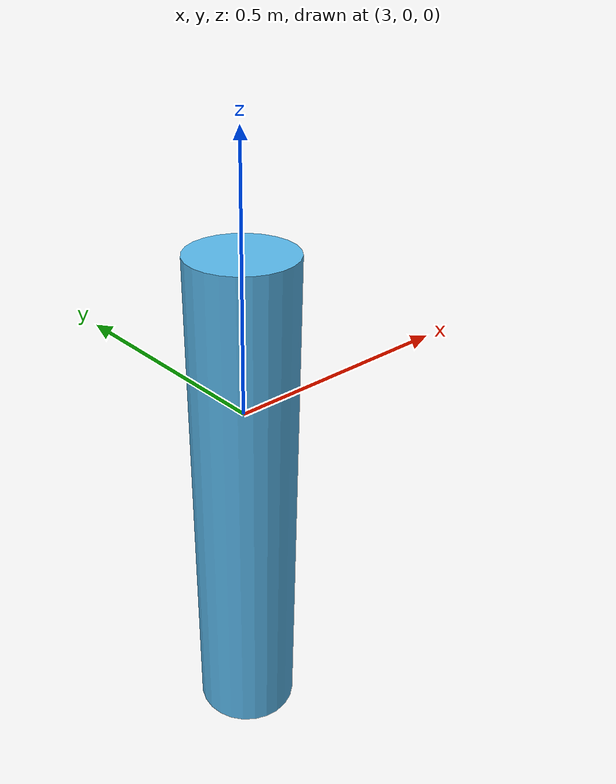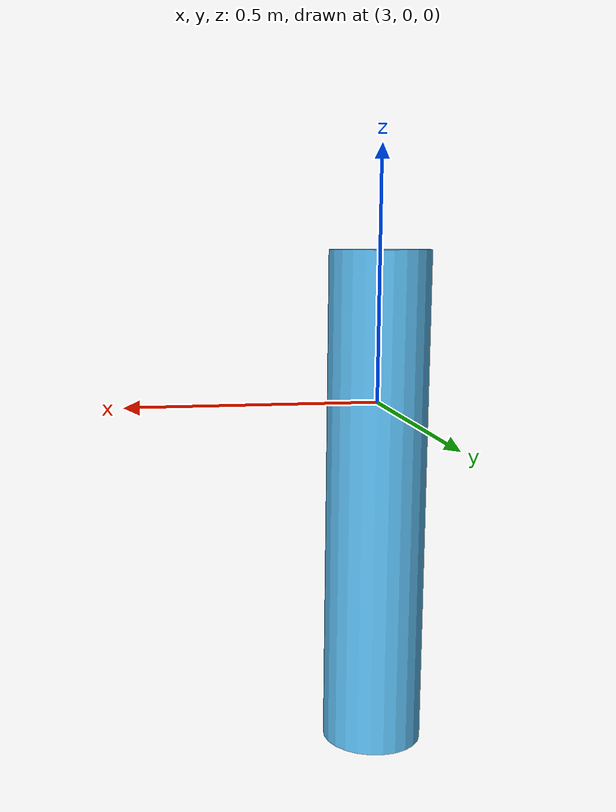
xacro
<?xml version="1.0" ?>
<robot xmlns:xacro="http://www.ros.org/wiki/xacro"
	name="obstacle">

  <xacro:macro name="default_inertial">
    <inertial>
      <mass value="0.01"/>
      <origin xyz="0 0 0"/>
      <inertia ixx="0.001" ixy="0.0" ixz="0.0" iyy="0.001" iyz="0.0" izz="0.001" />
    </inertial>
  </xacro:macro>

  <xacro:macro name="new_cylinder" params="new_cylinder_name cylinder_diameter cylinder_height material parent *origin">
    <link name="cylinder_${new_cylinder_name}">
      <visual>
        <origin xyz="0 0 0" rpy="0 0 0"/>
        <geometry>
              <cylinder length="${cylinder_height}" radius="${cylinder_diameter/2}"/>
        </geometry>
      </visual>
      <xacro:default_inertial/>
    </link>
    <gazebo reference="cylinder_${new_cylinder_name}">
      <material>${material}</material>
    </gazebo>
    <joint name="joint_box_${new_cylinder_name}" type="fixed">
       <xacro:insert_block name="origin"/>
       <parent link="${parent}"/>
       <child link="cylinder_${new_cylinder_name}"/>
    </joint>
  </xacro:macro>

  <!-- world link -->
  <link name="world" />

  <!-- cylinder link -->
  <xacro:new_cylinder new_cylinder_name="static_obstacle_1" cylinder_diameter = "0.2" cylinder_height = "1" material="experiments/wall" parent="world">
  <origin xyz="3 0 -0.2" rpy="0 0 0"/>
  </xacro:new_cylinder>

</robot>
